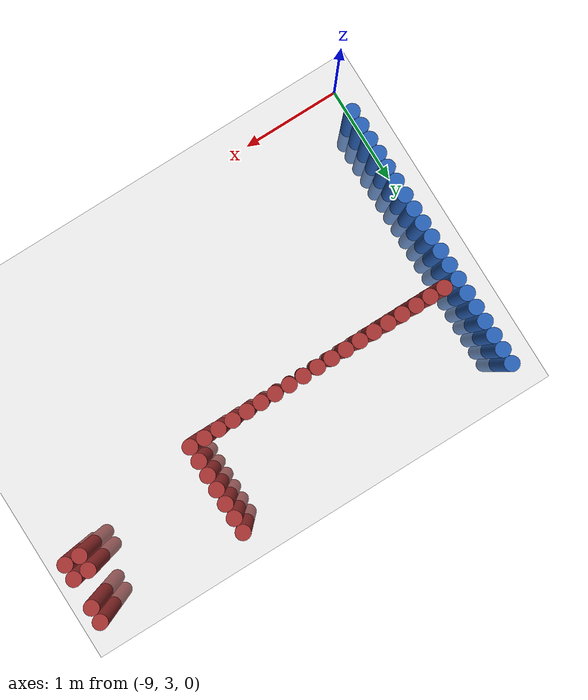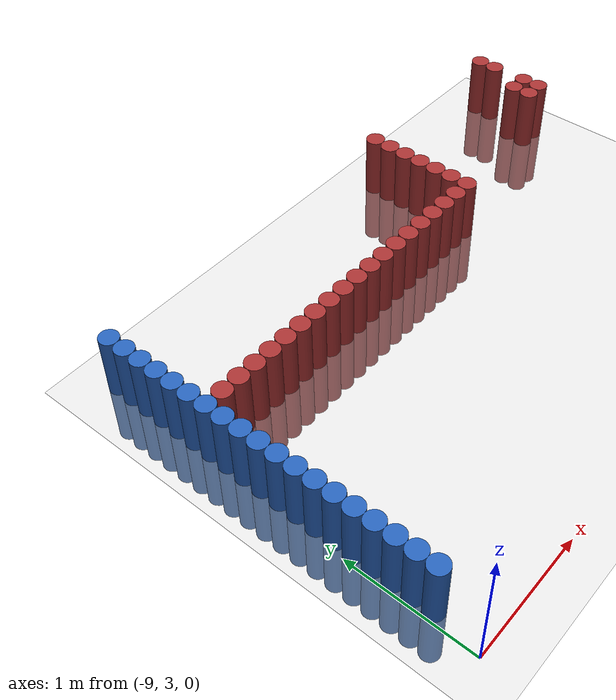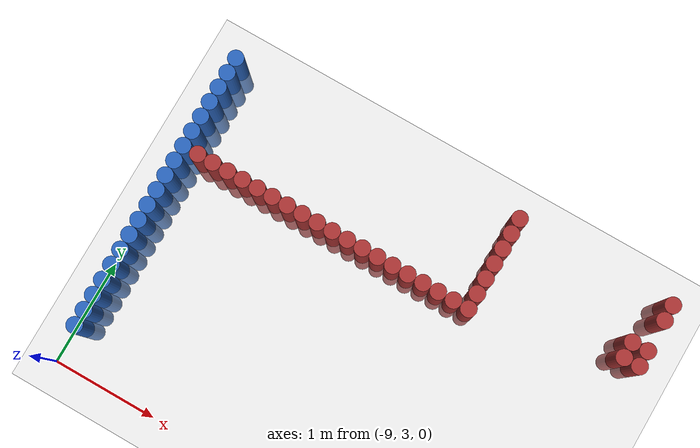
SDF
<sdf version="1.6">
 <world name="default">
  <model name="ground_plane">
   <static>1</static>
   <link name="link">
    <collision name="collision">
     <geometry><plane><normal>0 0 1</normal><size>100 100</size></plane></geometry>
     <surface><friction><ode><mu>100</mu><mu2>50</mu2></ode></friction></surface>
    </collision>
    <visual name="visual">
     <cast_shadows>0</cast_shadows>
     <geometry><plane><normal>0 0 1</normal><size>100 100</size></plane></geometry>
     <material>
      <script><uri>file://media/materials/scripts/gazebo.material</uri><name>Gazebo/Grey</name></script>
     </material>
    </visual>
   </link>
  </model>
  <model name="unit_cylinder_102">
   <static>1</static>
   <pose>-8.925000 3.375000 0.000000 0.000000 0.000000 0.000000</pose>
   <link name="link">
    <inertial>
     <mass>1</mass>
     <inertia><ixx>0.145833</ixx><ixy>0</ixy><ixz>0</ixz><iyy>0.145833</iyy><iyz>0</iyz><izz>0.125</izz></inertia>
    </inertial>
    <collision name="collision">
     <geometry><cylinder><radius>0.075000</radius><length>1</length></cylinder></geometry>
    </collision>
    <visual name="visual">
     <geometry><cylinder><radius>0.075000</radius><length>1</length></cylinder></geometry>
     <material>
      <ambient>0.152000 0.379000 0.720000 1</ambient>
      <diffuse>0.152000 0.379000 0.720000 1</diffuse>
     </material>
     <material>
      <script><name>Gazebo/Grey</name><uri>file://media/materials/scripts/gazebo.material</uri></script>
     </material>
    </visual>
   </link>
  </model>
  <model name="unit_cylinder_104">
   <static>1</static>
   <pose>-8.925000 3.525000 0.000000 0.000000 0.000000 0.000000</pose>
   <link name="link">
    <inertial>
     <mass>1</mass>
     <inertia><ixx>0.145833</ixx><ixy>0</ixy><ixz>0</ixz><iyy>0.145833</iyy><iyz>0</iyz><izz>0.125</izz></inertia>
    </inertial>
    <collision name="collision">
     <geometry><cylinder><radius>0.075000</radius><length>1</length></cylinder></geometry>
    </collision>
    <visual name="visual">
     <geometry><cylinder><radius>0.075000</radius><length>1</length></cylinder></geometry>
     <material>
      <ambient>0.152000 0.379000 0.720000 1</ambient>
      <diffuse>0.152000 0.379000 0.720000 1</diffuse>
     </material>
     <material>
      <script><name>Gazebo/Grey</name><uri>file://media/materials/scripts/gazebo.material</uri></script>
     </material>
    </visual>
   </link>
  </model>
  <model name="unit_cylinder_106">
   <static>1</static>
   <pose>-8.925000 3.675000 0.000000 0.000000 0.000000 0.000000</pose>
   <link name="link">
    <inertial>
     <mass>1</mass>
     <inertia><ixx>0.145833</ixx><ixy>0</ixy><ixz>0</ixz><iyy>0.145833</iyy><iyz>0</iyz><izz>0.125</izz></inertia>
    </inertial>
    <collision name="collision">
     <geometry><cylinder><radius>0.075000</radius><length>1</length></cylinder></geometry>
    </collision>
    <visual name="visual">
     <geometry><cylinder><radius>0.075000</radius><length>1</length></cylinder></geometry>
     <material>
      <ambient>0.152000 0.379000 0.720000 1</ambient>
      <diffuse>0.152000 0.379000 0.720000 1</diffuse>
     </material>
     <material>
      <script><name>Gazebo/Grey</name><uri>file://media/materials/scripts/gazebo.material</uri></script>
     </material>
    </visual>
   </link>
  </model>
  <model name="unit_cylinder_108">
   <static>1</static>
   <pose>-8.925000 3.825000 0.000000 0.000000 0.000000 0.000000</pose>
   <link name="link">
    <inertial>
     <mass>1</mass>
     <inertia><ixx>0.145833</ixx><ixy>0</ixy><ixz>0</ixz><iyy>0.145833</iyy><iyz>0</iyz><izz>0.125</izz></inertia>
    </inertial>
    <collision name="collision">
     <geometry><cylinder><radius>0.075000</radius><length>1</length></cylinder></geometry>
    </collision>
    <visual name="visual">
     <geometry><cylinder><radius>0.075000</radius><length>1</length></cylinder></geometry>
     <material>
      <ambient>0.152000 0.379000 0.720000 1</ambient>
      <diffuse>0.152000 0.379000 0.720000 1</diffuse>
     </material>
     <material>
      <script><name>Gazebo/Grey</name><uri>file://media/materials/scripts/gazebo.material</uri></script>
     </material>
    </visual>
   </link>
  </model>
  <model name="unit_cylinder_110">
   <static>1</static>
   <pose>-8.925000 3.975000 0.000000 0.000000 0.000000 0.000000</pose>
   <link name="link">
    <inertial>
     <mass>1</mass>
     <inertia><ixx>0.145833</ixx><ixy>0</ixy><ixz>0</ixz><iyy>0.145833</iyy><iyz>0</iyz><izz>0.125</izz></inertia>
    </inertial>
    <collision name="collision">
     <geometry><cylinder><radius>0.075000</radius><length>1</length></cylinder></geometry>
    </collision>
    <visual name="visual">
     <geometry><cylinder><radius>0.075000</radius><length>1</length></cylinder></geometry>
     <material>
      <ambient>0.152000 0.379000 0.720000 1</ambient>
      <diffuse>0.152000 0.379000 0.720000 1</diffuse>
     </material>
     <material>
      <script><name>Gazebo/Grey</name><uri>file://media/materials/scripts/gazebo.material</uri></script>
     </material>
    </visual>
   </link>
  </model>
  <model name="unit_cylinder_112">
   <static>1</static>
   <pose>-8.925000 4.125000 0.000000 0.000000 0.000000 0.000000</pose>
   <link name="link">
    <inertial>
     <mass>1</mass>
     <inertia><ixx>0.145833</ixx><ixy>0</ixy><ixz>0</ixz><iyy>0.145833</iyy><iyz>0</iyz><izz>0.125</izz></inertia>
    </inertial>
    <collision name="collision">
     <geometry><cylinder><radius>0.075000</radius><length>1</length></cylinder></geometry>
    </collision>
    <visual name="visual">
     <geometry><cylinder><radius>0.075000</radius><length>1</length></cylinder></geometry>
     <material>
      <ambient>0.152000 0.379000 0.720000 1</ambient>
      <diffuse>0.152000 0.379000 0.720000 1</diffuse>
     </material>
     <material>
      <script><name>Gazebo/Grey</name><uri>file://media/materials/scripts/gazebo.material</uri></script>
     </material>
    </visual>
   </link>
  </model>
  <model name="unit_cylinder_114">
   <static>1</static>
   <pose>-8.925000 4.275000 0.000000 0.000000 0.000000 0.000000</pose>
   <link name="link">
    <inertial>
     <mass>1</mass>
     <inertia><ixx>0.145833</ixx><ixy>0</ixy><ixz>0</ixz><iyy>0.145833</iyy><iyz>0</iyz><izz>0.125</izz></inertia>
    </inertial>
    <collision name="collision">
     <geometry><cylinder><radius>0.075000</radius><length>1</length></cylinder></geometry>
    </collision>
    <visual name="visual">
     <geometry><cylinder><radius>0.075000</radius><length>1</length></cylinder></geometry>
     <material>
      <ambient>0.152000 0.379000 0.720000 1</ambient>
      <diffuse>0.152000 0.379000 0.720000 1</diffuse>
     </material>
     <material>
      <script><name>Gazebo/Grey</name><uri>file://media/materials/scripts/gazebo.material</uri></script>
     </material>
    </visual>
   </link>
  </model>
  <model name="unit_cylinder_116">
   <static>1</static>
   <pose>-8.925000 4.425000 0.000000 0.000000 0.000000 0.000000</pose>
   <link name="link">
    <inertial>
     <mass>1</mass>
     <inertia><ixx>0.145833</ixx><ixy>0</ixy><ixz>0</ixz><iyy>0.145833</iyy><iyz>0</iyz><izz>0.125</izz></inertia>
    </inertial>
    <collision name="collision">
     <geometry><cylinder><radius>0.075000</radius><length>1</length></cylinder></geometry>
    </collision>
    <visual name="visual">
     <geometry><cylinder><radius>0.075000</radius><length>1</length></cylinder></geometry>
     <material>
      <ambient>0.152000 0.379000 0.720000 1</ambient>
      <diffuse>0.152000 0.379000 0.720000 1</diffuse>
     </material>
     <material>
      <script><name>Gazebo/Grey</name><uri>file://media/materials/scripts/gazebo.material</uri></script>
     </material>
    </visual>
   </link>
  </model>
  <model name="unit_cylinder_118">
   <static>1</static>
   <pose>-8.925000 4.575000 0.000000 0.000000 0.000000 0.000000</pose>
   <link name="link">
    <inertial>
     <mass>1</mass>
     <inertia><ixx>0.145833</ixx><ixy>0</ixy><ixz>0</ixz><iyy>0.145833</iyy><iyz>0</iyz><izz>0.125</izz></inertia>
    </inertial>
    <collision name="collision">
     <geometry><cylinder><radius>0.075000</radius><length>1</length></cylinder></geometry>
    </collision>
    <visual name="visual">
     <geometry><cylinder><radius>0.075000</radius><length>1</length></cylinder></geometry>
     <material>
      <ambient>0.152000 0.379000 0.720000 1</ambient>
      <diffuse>0.152000 0.379000 0.720000 1</diffuse>
     </material>
     <material>
      <script><name>Gazebo/Grey</name><uri>file://media/materials/scripts/gazebo.material</uri></script>
     </material>
    </visual>
   </link>
  </model>
  <model name="unit_cylinder_120">
   <static>1</static>
   <pose>-8.925000 4.725000 0.000000 0.000000 0.000000 0.000000</pose>
   <link name="link">
    <inertial>
     <mass>1</mass>
     <inertia><ixx>0.145833</ixx><ixy>0</ixy><ixz>0</ixz><iyy>0.145833</iyy><iyz>0</iyz><izz>0.125</izz></inertia>
    </inertial>
    <collision name="collision">
     <geometry><cylinder><radius>0.075000</radius><length>1</length></cylinder></geometry>
    </collision>
    <visual name="visual">
     <geometry><cylinder><radius>0.075000</radius><length>1</length></cylinder></geometry>
     <material>
      <ambient>0.152000 0.379000 0.720000 1</ambient>
      <diffuse>0.152000 0.379000 0.720000 1</diffuse>
     </material>
     <material>
      <script><name>Gazebo/Grey</name><uri>file://media/materials/scripts/gazebo.material</uri></script>
     </material>
    </visual>
   </link>
  </model>
  <model name="unit_cylinder_122">
   <static>1</static>
   <pose>-8.925000 4.875000 0.000000 0.000000 0.000000 0.000000</pose>
   <link name="link">
    <inertial>
     <mass>1</mass>
     <inertia><ixx>0.145833</ixx><ixy>0</ixy><ixz>0</ixz><iyy>0.145833</iyy><iyz>0</iyz><izz>0.125</izz></inertia>
    </inertial>
    <collision name="collision">
     <geometry><cylinder><radius>0.075000</radius><length>1</length></cylinder></geometry>
    </collision>
    <visual name="visual">
     <geometry><cylinder><radius>0.075000</radius><length>1</length></cylinder></geometry>
     <material>
      <ambient>0.152000 0.379000 0.720000 1</ambient>
      <diffuse>0.152000 0.379000 0.720000 1</diffuse>
     </material>
     <material>
      <script><name>Gazebo/Grey</name><uri>file://media/materials/scripts/gazebo.material</uri></script>
     </material>
    </visual>
   </link>
  </model>
  <model name="unit_cylinder_124">
   <static>1</static>
   <pose>-8.925000 5.025000 0.000000 0.000000 0.000000 0.000000</pose>
   <link name="link">
    <inertial>
     <mass>1</mass>
     <inertia><ixx>0.145833</ixx><ixy>0</ixy><ixz>0</ixz><iyy>0.145833</iyy><iyz>0</iyz><izz>0.125</izz></inertia>
    </inertial>
    <collision name="collision">
     <geometry><cylinder><radius>0.075000</radius><length>1</length></cylinder></geometry>
    </collision>
    <visual name="visual">
     <geometry><cylinder><radius>0.075000</radius><length>1</length></cylinder></geometry>
     <material>
      <ambient>0.152000 0.379000 0.720000 1</ambient>
      <diffuse>0.152000 0.379000 0.720000 1</diffuse>
     </material>
     <material>
      <script><name>Gazebo/Grey</name><uri>file://media/materials/scripts/gazebo.material</uri></script>
     </material>
    </visual>
   </link>
  </model>
  <model name="unit_cylinder_125">
   <static>1</static>
   <pose>-8.925000 5.175000 0.000000 0.000000 0.000000 0.000000</pose>
   <link name="link">
    <inertial>
     <mass>1</mass>
     <inertia><ixx>0.145833</ixx><ixy>0</ixy><ixz>0</ixz><iyy>0.145833</iyy><iyz>0</iyz><izz>0.125</izz></inertia>
    </inertial>
    <collision name="collision">
     <geometry><cylinder><radius>0.075000</radius><length>1</length></cylinder></geometry>
    </collision>
    <visual name="visual">
     <geometry><cylinder><radius>0.075000</radius><length>1</length></cylinder></geometry>
     <material>
      <ambient>0.152000 0.379000 0.720000 1</ambient>
      <diffuse>0.152000 0.379000 0.720000 1</diffuse>
     </material>
     <material>
      <script><name>Gazebo/Grey</name><uri>file://media/materials/scripts/gazebo.material</uri></script>
     </material>
    </visual>
   </link>
  </model>
  <model name="unit_cylinder_126">
   <static>1</static>
   <pose>-8.925000 5.325000 0.000000 0.000000 0.000000 0.000000</pose>
   <link name="link">
    <inertial>
     <mass>1</mass>
     <inertia><ixx>0.145833</ixx><ixy>0</ixy><ixz>0</ixz><iyy>0.145833</iyy><iyz>0</iyz><izz>0.125</izz></inertia>
    </inertial>
    <collision name="collision">
     <geometry><cylinder><radius>0.075000</radius><length>1</length></cylinder></geometry>
    </collision>
    <visual name="visual">
     <geometry><cylinder><radius>0.075000</radius><length>1</length></cylinder></geometry>
     <material>
      <ambient>0.152000 0.379000 0.720000 1</ambient>
      <diffuse>0.152000 0.379000 0.720000 1</diffuse>
     </material>
     <material>
      <script><name>Gazebo/Grey</name><uri>file://media/materials/scripts/gazebo.material</uri></script>
     </material>
    </visual>
   </link>
  </model>
  <model name="unit_cylinder_127">
   <static>1</static>
   <pose>-8.925000 5.475000 0.000000 0.000000 0.000000 0.000000</pose>
   <link name="link">
    <inertial>
     <mass>1</mass>
     <inertia><ixx>0.145833</ixx><ixy>0</ixy><ixz>0</ixz><iyy>0.145833</iyy><iyz>0</iyz><izz>0.125</izz></inertia>
    </inertial>
    <collision name="collision">
     <geometry><cylinder><radius>0.075000</radius><length>1</length></cylinder></geometry>
    </collision>
    <visual name="visual">
     <geometry><cylinder><radius>0.075000</radius><length>1</length></cylinder></geometry>
     <material>
      <ambient>0.152000 0.379000 0.720000 1</ambient>
      <diffuse>0.152000 0.379000 0.720000 1</diffuse>
     </material>
     <material>
      <script><name>Gazebo/Grey</name><uri>file://media/materials/scripts/gazebo.material</uri></script>
     </material>
    </visual>
   </link>
  </model>
  <model name="unit_cylinder_128">
   <static>1</static>
   <pose>-8.925000 5.625000 0.000000 0.000000 0.000000 0.000000</pose>
   <link name="link">
    <inertial>
     <mass>1</mass>
     <inertia><ixx>0.145833</ixx><ixy>0</ixy><ixz>0</ixz><iyy>0.145833</iyy><iyz>0</iyz><izz>0.125</izz></inertia>
    </inertial>
    <collision name="collision">
     <geometry><cylinder><radius>0.075000</radius><length>1</length></cylinder></geometry>
    </collision>
    <visual name="visual">
     <geometry><cylinder><radius>0.075000</radius><length>1</length></cylinder></geometry>
     <material>
      <ambient>0.152000 0.379000 0.720000 1</ambient>
      <diffuse>0.152000 0.379000 0.720000 1</diffuse>
     </material>
     <material>
      <script><name>Gazebo/Grey</name><uri>file://media/materials/scripts/gazebo.material</uri></script>
     </material>
    </visual>
   </link>
  </model>
  <model name="unit_cylinder_129">
   <static>1</static>
   <pose>-8.925000 5.775000 0.000000 0.000000 0.000000 0.000000</pose>
   <link name="link">
    <inertial>
     <mass>1</mass>
     <inertia><ixx>0.145833</ixx><ixy>0</ixy><ixz>0</ixz><iyy>0.145833</iyy><iyz>0</iyz><izz>0.125</izz></inertia>
    </inertial>
    <collision name="collision">
     <geometry><cylinder><radius>0.075000</radius><length>1</length></cylinder></geometry>
    </collision>
    <visual name="visual">
     <geometry><cylinder><radius>0.075000</radius><length>1</length></cylinder></geometry>
     <material>
      <ambient>0.152000 0.379000 0.720000 1</ambient>
      <diffuse>0.152000 0.379000 0.720000 1</diffuse>
     </material>
     <material>
      <script><name>Gazebo/Grey</name><uri>file://media/materials/scripts/gazebo.material</uri></script>
     </material>
    </visual>
   </link>
  </model>
  <model name="unit_cylinder_130">
   <static>1</static>
   <pose>-8.925000 5.925000 0.000000 0.000000 0.000000 0.000000</pose>
   <link name="link">
    <inertial>
     <mass>1</mass>
     <inertia><ixx>0.145833</ixx><ixy>0</ixy><ixz>0</ixz><iyy>0.145833</iyy><iyz>0</iyz><izz>0.125</izz></inertia>
    </inertial>
    <collision name="collision">
     <geometry><cylinder><radius>0.075000</radius><length>1</length></cylinder></geometry>
    </collision>
    <visual name="visual">
     <geometry><cylinder><radius>0.075000</radius><length>1</length></cylinder></geometry>
     <material>
      <ambient>0.152000 0.379000 0.720000 1</ambient>
      <diffuse>0.152000 0.379000 0.720000 1</diffuse>
     </material>
     <material>
      <script><name>Gazebo/Grey</name><uri>file://media/materials/scripts/gazebo.material</uri></script>
     </material>
    </visual>
   </link>
  </model>
  <model name="unit_cylinder_131">
   <static>1</static>
   <pose>-8.925000 6.075000 0.000000 0.000000 0.000000 0.000000</pose>
   <link name="link">
    <inertial>
     <mass>1</mass>
     <inertia><ixx>0.145833</ixx><ixy>0</ixy><ixz>0</ixz><iyy>0.145833</iyy><iyz>0</iyz><izz>0.125</izz></inertia>
    </inertial>
    <collision name="collision">
     <geometry><cylinder><radius>0.075000</radius><length>1</length></cylinder></geometry>
    </collision>
    <visual name="visual">
     <geometry><cylinder><radius>0.075000</radius><length>1</length></cylinder></geometry>
     <material>
      <ambient>0.152000 0.379000 0.720000 1</ambient>
      <diffuse>0.152000 0.379000 0.720000 1</diffuse>
     </material>
     <material>
      <script><name>Gazebo/Grey</name><uri>file://media/materials/scripts/gazebo.material</uri></script>
     </material>
    </visual>
   </link>
  </model>
  <model name="unit_cylinder_155">
   <static>1</static>
   <pose>-8.775000 5.175000 0.000000 0.000000 0.000000 0.000000</pose>
   <link name="link">
    <inertial>
     <mass>1</mass>
     <inertia><ixx>0.145833</ixx><ixy>0</ixy><ixz>0</ixz><iyy>0.145833</iyy><iyz>0</iyz><izz>0.125</izz></inertia>
    </inertial>
    <collision name="collision">
     <geometry><cylinder><radius>0.075000</radius><length>1</length></cylinder></geometry>
    </collision>
    <visual name="visual">
     <geometry><cylinder><radius>0.075000</radius><length>1</length></cylinder></geometry>
     <material>
      <ambient>0.648000 0.192000 0.192000 1</ambient>
      <diffuse>0.648000 0.192000 0.192000 1</diffuse>
     </material>
     <material>
      <script><name>Gazebo/Grey</name><uri>file://media/materials/scripts/gazebo.material</uri></script>
     </material>
    </visual>
   </link>
  </model>
  <model name="unit_cylinder_157">
   <static>1</static>
   <pose>-8.625000 5.175000 0.000000 0.000000 0.000000 0.000000</pose>
   <link name="link">
    <inertial>
     <mass>1</mass>
     <inertia><ixx>0.145833</ixx><ixy>0</ixy><ixz>0</ixz><iyy>0.145833</iyy><iyz>0</iyz><izz>0.125</izz></inertia>
    </inertial>
    <collision name="collision">
     <geometry><cylinder><radius>0.075000</radius><length>1</length></cylinder></geometry>
    </collision>
    <visual name="visual">
     <geometry><cylinder><radius>0.075000</radius><length>1</length></cylinder></geometry>
     <material>
      <ambient>0.648000 0.192000 0.192000 1</ambient>
      <diffuse>0.648000 0.192000 0.192000 1</diffuse>
     </material>
     <material>
      <script><name>Gazebo/Grey</name><uri>file://media/materials/scripts/gazebo.material</uri></script>
     </material>
    </visual>
   </link>
  </model>
  <model name="unit_cylinder_159">
   <static>1</static>
   <pose>-8.475000 5.175000 0.000000 0.000000 0.000000 0.000000</pose>
   <link name="link">
    <inertial>
     <mass>1</mass>
     <inertia><ixx>0.145833</ixx><ixy>0</ixy><ixz>0</ixz><iyy>0.145833</iyy><iyz>0</iyz><izz>0.125</izz></inertia>
    </inertial>
    <collision name="collision">
     <geometry><cylinder><radius>0.075000</radius><length>1</length></cylinder></geometry>
    </collision>
    <visual name="visual">
     <geometry><cylinder><radius>0.075000</radius><length>1</length></cylinder></geometry>
     <material>
      <ambient>0.648000 0.192000 0.192000 1</ambient>
      <diffuse>0.648000 0.192000 0.192000 1</diffuse>
     </material>
     <material>
      <script><name>Gazebo/Grey</name><uri>file://media/materials/scripts/gazebo.material</uri></script>
     </material>
    </visual>
   </link>
  </model>
  <model name="unit_cylinder_161">
   <static>1</static>
   <pose>-8.325000 5.175000 0.000000 0.000000 0.000000 0.000000</pose>
   <link name="link">
    <inertial>
     <mass>1</mass>
     <inertia><ixx>0.145833</ixx><ixy>0</ixy><ixz>0</ixz><iyy>0.145833</iyy><iyz>0</iyz><izz>0.125</izz></inertia>
    </inertial>
    <collision name="collision">
     <geometry><cylinder><radius>0.075000</radius><length>1</length></cylinder></geometry>
    </collision>
    <visual name="visual">
     <geometry><cylinder><radius>0.075000</radius><length>1</length></cylinder></geometry>
     <material>
      <ambient>0.648000 0.192000 0.192000 1</ambient>
      <diffuse>0.648000 0.192000 0.192000 1</diffuse>
     </material>
     <material>
      <script><name>Gazebo/Grey</name><uri>file://media/materials/scripts/gazebo.material</uri></script>
     </material>
    </visual>
   </link>
  </model>
  <model name="unit_cylinder_163">
   <static>1</static>
   <pose>-8.175000 5.175000 0.000000 0.000000 0.000000 0.000000</pose>
   <link name="link">
    <inertial>
     <mass>1</mass>
     <inertia><ixx>0.145833</ixx><ixy>0</ixy><ixz>0</ixz><iyy>0.145833</iyy><iyz>0</iyz><izz>0.125</izz></inertia>
    </inertial>
    <collision name="collision">
     <geometry><cylinder><radius>0.075000</radius><length>1</length></cylinder></geometry>
    </collision>
    <visual name="visual">
     <geometry><cylinder><radius>0.075000</radius><length>1</length></cylinder></geometry>
     <material>
      <ambient>0.648000 0.192000 0.192000 1</ambient>
      <diffuse>0.648000 0.192000 0.192000 1</diffuse>
     </material>
     <material>
      <script><name>Gazebo/Grey</name><uri>file://media/materials/scripts/gazebo.material</uri></script>
     </material>
    </visual>
   </link>
  </model>
  <model name="unit_cylinder_165">
   <static>1</static>
   <pose>-8.025000 5.175000 0.000000 0.000000 0.000000 0.000000</pose>
   <link name="link">
    <inertial>
     <mass>1</mass>
     <inertia><ixx>0.145833</ixx><ixy>0</ixy><ixz>0</ixz><iyy>0.145833</iyy><iyz>0</iyz><izz>0.125</izz></inertia>
    </inertial>
    <collision name="collision">
     <geometry><cylinder><radius>0.075000</radius><length>1</length></cylinder></geometry>
    </collision>
    <visual name="visual">
     <geometry><cylinder><radius>0.075000</radius><length>1</length></cylinder></geometry>
     <material>
      <ambient>0.648000 0.192000 0.192000 1</ambient>
      <diffuse>0.648000 0.192000 0.192000 1</diffuse>
     </material>
     <material>
      <script><name>Gazebo/Grey</name><uri>file://media/materials/scripts/gazebo.material</uri></script>
     </material>
    </visual>
   </link>
  </model>
  <model name="unit_cylinder_167">
   <static>1</static>
   <pose>-7.875000 5.175000 0.000000 0.000000 0.000000 0.000000</pose>
   <link name="link">
    <inertial>
     <mass>1</mass>
     <inertia><ixx>0.145833</ixx><ixy>0</ixy><ixz>0</ixz><iyy>0.145833</iyy><iyz>0</iyz><izz>0.125</izz></inertia>
    </inertial>
    <collision name="collision">
     <geometry><cylinder><radius>0.075000</radius><length>1</length></cylinder></geometry>
    </collision>
    <visual name="visual">
     <geometry><cylinder><radius>0.075000</radius><length>1</length></cylinder></geometry>
     <material>
      <ambient>0.648000 0.192000 0.192000 1</ambient>
      <diffuse>0.648000 0.192000 0.192000 1</diffuse>
     </material>
     <material>
      <script><name>Gazebo/Grey</name><uri>file://media/materials/scripts/gazebo.material</uri></script>
     </material>
    </visual>
   </link>
  </model>
  <model name="unit_cylinder_169">
   <static>1</static>
   <pose>-7.725000 5.175000 0.000000 0.000000 0.000000 0.000000</pose>
   <link name="link">
    <inertial>
     <mass>1</mass>
     <inertia><ixx>0.145833</ixx><ixy>0</ixy><ixz>0</ixz><iyy>0.145833</iyy><iyz>0</iyz><izz>0.125</izz></inertia>
    </inertial>
    <collision name="collision">
     <geometry><cylinder><radius>0.075000</radius><length>1</length></cylinder></geometry>
    </collision>
    <visual name="visual">
     <geometry><cylinder><radius>0.075000</radius><length>1</length></cylinder></geometry>
     <material>
      <ambient>0.648000 0.192000 0.192000 1</ambient>
      <diffuse>0.648000 0.192000 0.192000 1</diffuse>
     </material>
     <material>
      <script><name>Gazebo/Grey</name><uri>file://media/materials/scripts/gazebo.material</uri></script>
     </material>
    </visual>
   </link>
  </model>
  <model name="unit_cylinder_171">
   <static>1</static>
   <pose>-7.575000 5.175000 0.000000 0.000000 0.000000 0.000000</pose>
   <link name="link">
    <inertial>
     <mass>1</mass>
     <inertia><ixx>0.145833</ixx><ixy>0</ixy><ixz>0</ixz><iyy>0.145833</iyy><iyz>0</iyz><izz>0.125</izz></inertia>
    </inertial>
    <collision name="collision">
     <geometry><cylinder><radius>0.075000</radius><length>1</length></cylinder></geometry>
    </collision>
    <visual name="visual">
     <geometry><cylinder><radius>0.075000</radius><length>1</length></cylinder></geometry>
     <material>
      <ambient>0.648000 0.192000 0.192000 1</ambient>
      <diffuse>0.648000 0.192000 0.192000 1</diffuse>
     </material>
     <material>
      <script><name>Gazebo/Grey</name><uri>file://media/materials/scripts/gazebo.material</uri></script>
     </material>
    </visual>
   </link>
  </model>
  <model name="unit_cylinder_185">
   <static>1</static>
   <pose>-7.425000 5.175000 0.000000 0.000000 0.000000 0.000000</pose>
   <link name="link">
    <inertial>
     <mass>1</mass>
     <inertia><ixx>0.145833</ixx><ixy>0</ixy><ixz>0</ixz><iyy>0.145833</iyy><iyz>0</iyz><izz>0.125</izz></inertia>
    </inertial>
    <collision name="collision">
     <geometry><cylinder><radius>0.075000</radius><length>1</length></cylinder></geometry>
    </collision>
    <visual name="visual">
     <geometry><cylinder><radius>0.075000</radius><length>1</length></cylinder></geometry>
     <material>
      <ambient>0.648000 0.192000 0.192000 1</ambient>
      <diffuse>0.648000 0.192000 0.192000 1</diffuse>
     </material>
     <material>
      <script><name>Gazebo/Grey</name><uri>file://media/materials/scripts/gazebo.material</uri></script>
     </material>
    </visual>
   </link>
  </model>
  <model name="unit_cylinder_188">
   <static>1</static>
   <pose>-7.275000 5.175000 0.000000 0.000000 0.000000 0.000000</pose>
   <link name="link">
    <inertial>
     <mass>1</mass>
     <inertia><ixx>0.145833</ixx><ixy>0</ixy><ixz>0</ixz><iyy>0.145833</iyy><iyz>0</iyz><izz>0.125</izz></inertia>
    </inertial>
    <collision name="collision">
     <geometry><cylinder><radius>0.075000</radius><length>1</length></cylinder></geometry>
    </collision>
    <visual name="visual">
     <geometry><cylinder><radius>0.075000</radius><length>1</length></cylinder></geometry>
     <material>
      <ambient>0.648000 0.192000 0.192000 1</ambient>
      <diffuse>0.648000 0.192000 0.192000 1</diffuse>
     </material>
     <material>
      <script><name>Gazebo/Grey</name><uri>file://media/materials/scripts/gazebo.material</uri></script>
     </material>
    </visual>
   </link>
  </model>
  <model name="unit_cylinder_191">
   <static>1</static>
   <pose>-7.125000 5.175000 0.000000 0.000000 0.000000 0.000000</pose>
   <link name="link">
    <inertial>
     <mass>1</mass>
     <inertia><ixx>0.145833</ixx><ixy>0</ixy><ixz>0</ixz><iyy>0.145833</iyy><iyz>0</iyz><izz>0.125</izz></inertia>
    </inertial>
    <collision name="collision">
     <geometry><cylinder><radius>0.075000</radius><length>1</length></cylinder></geometry>
    </collision>
    <visual name="visual">
     <geometry><cylinder><radius>0.075000</radius><length>1</length></cylinder></geometry>
     <material>
      <ambient>0.648000 0.192000 0.192000 1</ambient>
      <diffuse>0.648000 0.192000 0.192000 1</diffuse>
     </material>
     <material>
      <script><name>Gazebo/Grey</name><uri>file://media/materials/scripts/gazebo.material</uri></script>
     </material>
    </visual>
   </link>
  </model>
  <model name="unit_cylinder_193">
   <static>1</static>
   <pose>-6.975000 5.175000 0.000000 0.000000 0.000000 0.000000</pose>
   <link name="link">
    <inertial>
     <mass>1</mass>
     <inertia><ixx>0.145833</ixx><ixy>0</ixy><ixz>0</ixz><iyy>0.145833</iyy><iyz>0</iyz><izz>0.125</izz></inertia>
    </inertial>
    <collision name="collision">
     <geometry><cylinder><radius>0.075000</radius><length>1</length></cylinder></geometry>
    </collision>
    <visual name="visual">
     <geometry><cylinder><radius>0.075000</radius><length>1</length></cylinder></geometry>
     <material>
      <ambient>0.648000 0.192000 0.192000 1</ambient>
      <diffuse>0.648000 0.192000 0.192000 1</diffuse>
     </material>
     <material>
      <script><name>Gazebo/Grey</name><uri>file://media/materials/scripts/gazebo.material</uri></script>
     </material>
    </visual>
   </link>
  </model>
  <model name="unit_cylinder_195">
   <static>1</static>
   <pose>-6.825000 5.175000 0.000000 0.000000 0.000000 0.000000</pose>
   <link name="link">
    <inertial>
     <mass>1</mass>
     <inertia><ixx>0.145833</ixx><ixy>0</ixy><ixz>0</ixz><iyy>0.145833</iyy><iyz>0</iyz><izz>0.125</izz></inertia>
    </inertial>
    <collision name="collision">
     <geometry><cylinder><radius>0.075000</radius><length>1</length></cylinder></geometry>
    </collision>
    <visual name="visual">
     <geometry><cylinder><radius>0.075000</radius><length>1</length></cylinder></geometry>
     <material>
      <ambient>0.648000 0.192000 0.192000 1</ambient>
      <diffuse>0.648000 0.192000 0.192000 1</diffuse>
     </material>
     <material>
      <script><name>Gazebo/Grey</name><uri>file://media/materials/scripts/gazebo.material</uri></script>
     </material>
    </visual>
   </link>
  </model>
  <model name="unit_cylinder_200">
   <static>1</static>
   <pose>-6.675000 5.175000 0.000000 0.000000 0.000000 0.000000</pose>
   <link name="link">
    <inertial>
     <mass>1</mass>
     <inertia><ixx>0.145833</ixx><ixy>0</ixy><ixz>0</ixz><iyy>0.145833</iyy><iyz>0</iyz><izz>0.125</izz></inertia>
    </inertial>
    <collision name="collision">
     <geometry><cylinder><radius>0.075000</radius><length>1</length></cylinder></geometry>
    </collision>
    <visual name="visual">
     <geometry><cylinder><radius>0.075000</radius><length>1</length></cylinder></geometry>
     <material>
      <ambient>0.648000 0.192000 0.192000 1</ambient>
      <diffuse>0.648000 0.192000 0.192000 1</diffuse>
     </material>
     <material>
      <script><name>Gazebo/Grey</name><uri>file://media/materials/scripts/gazebo.material</uri></script>
     </material>
    </visual>
   </link>
  </model>
  <model name="unit_cylinder_203">
   <static>1</static>
   <pose>-6.525000 5.175000 0.000000 0.000000 0.000000 0.000000</pose>
   <link name="link">
    <inertial>
     <mass>1</mass>
     <inertia><ixx>0.145833</ixx><ixy>0</ixy><ixz>0</ixz><iyy>0.145833</iyy><iyz>0</iyz><izz>0.125</izz></inertia>
    </inertial>
    <collision name="collision">
     <geometry><cylinder><radius>0.075000</radius><length>1</length></cylinder></geometry>
    </collision>
    <visual name="visual">
     <geometry><cylinder><radius>0.075000</radius><length>1</length></cylinder></geometry>
     <material>
      <ambient>0.648000 0.192000 0.192000 1</ambient>
      <diffuse>0.648000 0.192000 0.192000 1</diffuse>
     </material>
     <material>
      <script><name>Gazebo/Grey</name><uri>file://media/materials/scripts/gazebo.material</uri></script>
     </material>
    </visual>
   </link>
  </model>
  <model name="unit_cylinder_205">
   <static>1</static>
   <pose>-6.375000 5.175000 0.000000 0.000000 0.000000 0.000000</pose>
   <link name="link">
    <inertial>
     <mass>1</mass>
     <inertia><ixx>0.145833</ixx><ixy>0</ixy><ixz>0</ixz><iyy>0.145833</iyy><iyz>0</iyz><izz>0.125</izz></inertia>
    </inertial>
    <collision name="collision">
     <geometry><cylinder><radius>0.075000</radius><length>1</length></cylinder></geometry>
    </collision>
    <visual name="visual">
     <geometry><cylinder><radius>0.075000</radius><length>1</length></cylinder></geometry>
     <material>
      <ambient>0.648000 0.192000 0.192000 1</ambient>
      <diffuse>0.648000 0.192000 0.192000 1</diffuse>
     </material>
     <material>
      <script><name>Gazebo/Grey</name><uri>file://media/materials/scripts/gazebo.material</uri></script>
     </material>
    </visual>
   </link>
  </model>
  <model name="unit_cylinder_207">
   <static>1</static>
   <pose>-6.225000 5.175000 0.000000 0.000000 0.000000 0.000000</pose>
   <link name="link">
    <inertial>
     <mass>1</mass>
     <inertia><ixx>0.145833</ixx><ixy>0</ixy><ixz>0</ixz><iyy>0.145833</iyy><iyz>0</iyz><izz>0.125</izz></inertia>
    </inertial>
    <collision name="collision">
     <geometry><cylinder><radius>0.075000</radius><length>1</length></cylinder></geometry>
    </collision>
    <visual name="visual">
     <geometry><cylinder><radius>0.075000</radius><length>1</length></cylinder></geometry>
     <material>
      <ambient>0.648000 0.192000 0.192000 1</ambient>
      <diffuse>0.648000 0.192000 0.192000 1</diffuse>
     </material>
     <material>
      <script><name>Gazebo/Grey</name><uri>file://media/materials/scripts/gazebo.material</uri></script>
     </material>
    </visual>
   </link>
  </model>
  <model name="unit_cylinder_213">
   <static>1</static>
   <pose>-6.075000 5.175000 0.000000 0.000000 0.000000 0.000000</pose>
   <link name="link">
    <inertial>
     <mass>1</mass>
     <inertia><ixx>0.145833</ixx><ixy>0</ixy><ixz>0</ixz><iyy>0.145833</iyy><iyz>0</iyz><izz>0.125</izz></inertia>
    </inertial>
    <collision name="collision">
     <geometry><cylinder><radius>0.075000</radius><length>1</length></cylinder></geometry>
    </collision>
    <visual name="visual">
     <geometry><cylinder><radius>0.075000</radius><length>1</length></cylinder></geometry>
     <material>
      <ambient>0.648000 0.192000 0.192000 1</ambient>
      <diffuse>0.648000 0.192000 0.192000 1</diffuse>
     </material>
     <material>
      <script><name>Gazebo/Grey</name><uri>file://media/materials/scripts/gazebo.material</uri></script>
     </material>
    </visual>
   </link>
  </model>
  <model name="unit_cylinder_214">
   <static>1</static>
   <pose>-6.075000 5.325000 0.000000 0.000000 0.000000 0.000000</pose>
   <link name="link">
    <inertial>
     <mass>1</mass>
     <inertia><ixx>0.145833</ixx><ixy>0</ixy><ixz>0</ixz><iyy>0.145833</iyy><iyz>0</iyz><izz>0.125</izz></inertia>
    </inertial>
    <collision name="collision">
     <geometry><cylinder><radius>0.075000</radius><length>1</length></cylinder></geometry>
    </collision>
    <visual name="visual">
     <geometry><cylinder><radius>0.075000</radius><length>1</length></cylinder></geometry>
     <material>
      <ambient>0.648000 0.192000 0.192000 1</ambient>
      <diffuse>0.648000 0.192000 0.192000 1</diffuse>
     </material>
     <material>
      <script><name>Gazebo/Grey</name><uri>file://media/materials/scripts/gazebo.material</uri></script>
     </material>
    </visual>
   </link>
  </model>
  <model name="unit_cylinder_215">
   <static>1</static>
   <pose>-6.075000 5.475000 0.000000 0.000000 0.000000 0.000000</pose>
   <link name="link">
    <inertial>
     <mass>1</mass>
     <inertia><ixx>0.145833</ixx><ixy>0</ixy><ixz>0</ixz><iyy>0.145833</iyy><iyz>0</iyz><izz>0.125</izz></inertia>
    </inertial>
    <collision name="collision">
     <geometry><cylinder><radius>0.075000</radius><length>1</length></cylinder></geometry>
    </collision>
    <visual name="visual">
     <geometry><cylinder><radius>0.075000</radius><length>1</length></cylinder></geometry>
     <material>
      <ambient>0.648000 0.192000 0.192000 1</ambient>
      <diffuse>0.648000 0.192000 0.192000 1</diffuse>
     </material>
     <material>
      <script><name>Gazebo/Grey</name><uri>file://media/materials/scripts/gazebo.material</uri></script>
     </material>
    </visual>
   </link>
  </model>
  <model name="unit_cylinder_216">
   <static>1</static>
   <pose>-6.075000 5.625000 0.000000 0.000000 0.000000 0.000000</pose>
   <link name="link">
    <inertial>
     <mass>1</mass>
     <inertia><ixx>0.145833</ixx><ixy>0</ixy><ixz>0</ixz><iyy>0.145833</iyy><iyz>0</iyz><izz>0.125</izz></inertia>
    </inertial>
    <collision name="collision">
     <geometry><cylinder><radius>0.075000</radius><length>1</length></cylinder></geometry>
    </collision>
    <visual name="visual">
     <geometry><cylinder><radius>0.075000</radius><length>1</length></cylinder></geometry>
     <material>
      <ambient>0.648000 0.192000 0.192000 1</ambient>
      <diffuse>0.648000 0.192000 0.192000 1</diffuse>
     </material>
     <material>
      <script><name>Gazebo/Grey</name><uri>file://media/materials/scripts/gazebo.material</uri></script>
     </material>
    </visual>
   </link>
  </model>
  <model name="unit_cylinder_217">
   <static>1</static>
   <pose>-6.075000 5.775000 0.000000 0.000000 0.000000 0.000000</pose>
   <link name="link">
    <inertial>
     <mass>1</mass>
     <inertia><ixx>0.145833</ixx><ixy>0</ixy><ixz>0</ixz><iyy>0.145833</iyy><iyz>0</iyz><izz>0.125</izz></inertia>
    </inertial>
    <collision name="collision">
     <geometry><cylinder><radius>0.075000</radius><length>1</length></cylinder></geometry>
    </collision>
    <visual name="visual">
     <geometry><cylinder><radius>0.075000</radius><length>1</length></cylinder></geometry>
     <material>
      <ambient>0.648000 0.192000 0.192000 1</ambient>
      <diffuse>0.648000 0.192000 0.192000 1</diffuse>
     </material>
     <material>
      <script><name>Gazebo/Grey</name><uri>file://media/materials/scripts/gazebo.material</uri></script>
     </material>
    </visual>
   </link>
  </model>
  <model name="unit_cylinder_218">
   <static>1</static>
   <pose>-6.075000 5.925000 0.000000 0.000000 0.000000 0.000000</pose>
   <link name="link">
    <inertial>
     <mass>1</mass>
     <inertia><ixx>0.145833</ixx><ixy>0</ixy><ixz>0</ixz><iyy>0.145833</iyy><iyz>0</iyz><izz>0.125</izz></inertia>
    </inertial>
    <collision name="collision">
     <geometry><cylinder><radius>0.075000</radius><length>1</length></cylinder></geometry>
    </collision>
    <visual name="visual">
     <geometry><cylinder><radius>0.075000</radius><length>1</length></cylinder></geometry>
     <material>
      <ambient>0.648000 0.192000 0.192000 1</ambient>
      <diffuse>0.648000 0.192000 0.192000 1</diffuse>
     </material>
     <material>
      <script><name>Gazebo/Grey</name><uri>file://media/materials/scripts/gazebo.material</uri></script>
     </material>
    </visual>
   </link>
  </model>
  <model name="unit_cylinder_219">
   <static>1</static>
   <pose>-6.075000 6.075000 0.000000 0.000000 0.000000 0.000000</pose>
   <link name="link">
    <inertial>
     <mass>1</mass>
     <inertia><ixx>0.145833</ixx><ixy>0</ixy><ixz>0</ixz><iyy>0.145833</iyy><iyz>0</iyz><izz>0.125</izz></inertia>
    </inertial>
    <collision name="collision">
     <geometry><cylinder><radius>0.075000</radius><length>1</length></cylinder></geometry>
    </collision>
    <visual name="visual">
     <geometry><cylinder><radius>0.075000</radius><length>1</length></cylinder></geometry>
     <material>
      <ambient>0.648000 0.192000 0.192000 1</ambient>
      <diffuse>0.648000 0.192000 0.192000 1</diffuse>
     </material>
     <material>
      <script><name>Gazebo/Grey</name><uri>file://media/materials/scripts/gazebo.material</uri></script>
     </material>
    </visual>
   </link>
  </model>
  <model name="unit_cylinder_266">
   <static>1</static>
   <pose>-4.725000 5.475000 0.000000 0.000000 0.000000 0.000000</pose>
   <link name="link">
    <inertial>
     <mass>1</mass>
     <inertia><ixx>0.145833</ixx><ixy>0</ixy><ixz>0</ixz><iyy>0.145833</iyy><iyz>0</iyz><izz>0.125</izz></inertia>
    </inertial>
    <collision name="collision">
     <geometry><cylinder><radius>0.075000</radius><length>1</length></cylinder></geometry>
    </collision>
    <visual name="visual">
     <geometry><cylinder><radius>0.075000</radius><length>1</length></cylinder></geometry>
     <material>
      <ambient>0.648000 0.192000 0.192000 1</ambient>
      <diffuse>0.648000 0.192000 0.192000 1</diffuse>
     </material>
     <material>
      <script><name>Gazebo/Grey</name><uri>file://media/materials/scripts/gazebo.material</uri></script>
     </material>
    </visual>
   </link>
  </model>
  <model name="unit_cylinder_267">
   <static>1</static>
   <pose>-4.725000 5.625000 0.000000 0.000000 0.000000 0.000000</pose>
   <link name="link">
    <inertial>
     <mass>1</mass>
     <inertia><ixx>0.145833</ixx><ixy>0</ixy><ixz>0</ixz><iyy>0.145833</iyy><iyz>0</iyz><izz>0.125</izz></inertia>
    </inertial>
    <collision name="collision">
     <geometry><cylinder><radius>0.075000</radius><length>1</length></cylinder></geometry>
    </collision>
    <visual name="visual">
     <geometry><cylinder><radius>0.075000</radius><length>1</length></cylinder></geometry>
     <material>
      <ambient>0.648000 0.192000 0.192000 1</ambient>
      <diffuse>0.648000 0.192000 0.192000 1</diffuse>
     </material>
     <material>
      <script><name>Gazebo/Grey</name><uri>file://media/materials/scripts/gazebo.material</uri></script>
     </material>
    </visual>
   </link>
  </model>
  <model name="unit_cylinder_277">
   <static>1</static>
   <pose>-4.575000 5.475000 0.000000 0.000000 0.000000 0.000000</pose>
   <link name="link">
    <inertial>
     <mass>1</mass>
     <inertia><ixx>0.145833</ixx><ixy>0</ixy><ixz>0</ixz><iyy>0.145833</iyy><iyz>0</iyz><izz>0.125</izz></inertia>
    </inertial>
    <collision name="collision">
     <geometry><cylinder><radius>0.075000</radius><length>1</length></cylinder></geometry>
    </collision>
    <visual name="visual">
     <geometry><cylinder><radius>0.075000</radius><length>1</length></cylinder></geometry>
     <material>
      <ambient>0.648000 0.192000 0.192000 1</ambient>
      <diffuse>0.648000 0.192000 0.192000 1</diffuse>
     </material>
     <material>
      <script><name>Gazebo/Grey</name><uri>file://media/materials/scripts/gazebo.material</uri></script>
     </material>
    </visual>
   </link>
  </model>
  <model name="unit_cylinder_278">
   <static>1</static>
   <pose>-4.575000 5.625000 0.000000 0.000000 0.000000 0.000000</pose>
   <link name="link">
    <inertial>
     <mass>1</mass>
     <inertia><ixx>0.145833</ixx><ixy>0</ixy><ixz>0</ixz><iyy>0.145833</iyy><iyz>0</iyz><izz>0.125</izz></inertia>
    </inertial>
    <collision name="collision">
     <geometry><cylinder><radius>0.075000</radius><length>1</length></cylinder></geometry>
    </collision>
    <visual name="visual">
     <geometry><cylinder><radius>0.075000</radius><length>1</length></cylinder></geometry>
     <material>
      <ambient>0.648000 0.192000 0.192000 1</ambient>
      <diffuse>0.648000 0.192000 0.192000 1</diffuse>
     </material>
     <material>
      <script><name>Gazebo/Grey</name><uri>file://media/materials/scripts/gazebo.material</uri></script>
     </material>
    </visual>
   </link>
  </model>
  <model name="unit_cylinder_279">
   <static>1</static>
   <pose>-4.575000 5.925000 0.000000 0.000000 0.000000 0.000000</pose>
   <link name="link">
    <inertial>
     <mass>1</mass>
     <inertia><ixx>0.145833</ixx><ixy>0</ixy><ixz>0</ixz><iyy>0.145833</iyy><iyz>0</iyz><izz>0.125</izz></inertia>
    </inertial>
    <collision name="collision">
     <geometry><cylinder><radius>0.075000</radius><length>1</length></cylinder></geometry>
    </collision>
    <visual name="visual">
     <geometry><cylinder><radius>0.075000</radius><length>1</length></cylinder></geometry>
     <material>
      <ambient>0.648000 0.192000 0.192000 1</ambient>
      <diffuse>0.648000 0.192000 0.192000 1</diffuse>
     </material>
     <material>
      <script><name>Gazebo/Grey</name><uri>file://media/materials/scripts/gazebo.material</uri></script>
     </material>
    </visual>
   </link>
  </model>
  <model name="unit_cylinder_280">
   <static>1</static>
   <pose>-4.575000 6.075000 0.000000 0.000000 0.000000 0.000000</pose>
   <link name="link">
    <inertial>
     <mass>1</mass>
     <inertia><ixx>0.145833</ixx><ixy>0</ixy><ixz>0</ixz><iyy>0.145833</iyy><iyz>0</iyz><izz>0.125</izz></inertia>
    </inertial>
    <collision name="collision">
     <geometry><cylinder><radius>0.075000</radius><length>1</length></cylinder></geometry>
    </collision>
    <visual name="visual">
     <geometry><cylinder><radius>0.075000</radius><length>1</length></cylinder></geometry>
     <material>
      <ambient>0.648000 0.192000 0.192000 1</ambient>
      <diffuse>0.648000 0.192000 0.192000 1</diffuse>
     </material>
     <material>
      <script><name>Gazebo/Grey</name><uri>file://media/materials/scripts/gazebo.material</uri></script>
     </material>
    </visual>
   </link>
  </model>
 </world>
</sdf>
